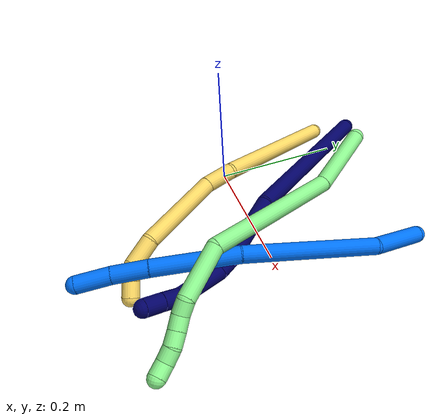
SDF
<sdf version="1.7">
 <world name="default">
  <model name="5">
   <static>0</static>
   <link name="5">
    <collision name="collision-cylinder-e_1_1_4">
     <pose>-0.055765 -0.09537 0.049164 1.09482 -0.479305 -0.295711</pose>
     <geometry><cylinder><radius>0.0125</radius><length>0.241845</length></cylinder></geometry>
     <surface>
      <friction><ode><mu>1.16</mu><mu2>1.16</mu2><slip1>0</slip1><slip2>0</slip2></ode></friction>
      <contact><ode><kp>1e+06</kp><kd>1</kd><max_vel>0</max_vel><min_depth>0.001</min_depth></ode></contact>
     </surface>
    </collision>
    <visual name="visual-cylinder-e_1_1_4">
     <pose>-0.055765 -0.09537 0.049164 1.09482 -0.479305 -0.295711</pose>
     <geometry><cylinder><radius>0.0125</radius><length>0.241845</length></cylinder></geometry>
     <material><ambient>1 0.858824 0.4 1</ambient></material>
    </visual>
    <collision name="collision-cylinder-e_2_4_5">
     <pose>-0.118486 -0.211951 0.101017 1.44467 -0.314528 -0.277673</pose>
     <geometry><cylinder><radius>0.0125</radius><length>0.044969</length></cylinder></geometry>
     <surface>
      <friction><ode><mu>1.16</mu><mu2>1.16</mu2><slip1>0</slip1><slip2>0</slip2></ode></friction>
      <contact><ode><kp>1e+06</kp><kd>1</kd><max_vel>0</max_vel><min_depth>0.001</min_depth></ode></contact>
     </surface>
    </collision>
    <visual name="visual-cylinder-e_2_4_5">
     <pose>-0.118486 -0.211951 0.101017 1.44467 -0.314528 -0.277673</pose>
     <geometry><cylinder><radius>0.0125</radius><length>0.044969</length></cylinder></geometry>
     <material><ambient>1 0.858824 0.4 1</ambient></material>
    </visual>
    <collision name="collision-cylinder-e_3_5_6">
     <pose>-0.136284 -0.29204 0.125876 1.21069 -0.170664 -0.11825</pose>
     <geometry><cylinder><radius>0.0125</radius><length>0.127679</length></cylinder></geometry>
     <surface>
      <friction><ode><mu>1.16</mu><mu2>1.16</mu2><slip1>0</slip1><slip2>0</slip2></ode></friction>
      <contact><ode><kp>1e+06</kp><kd>1</kd><max_vel>0</max_vel><min_depth>0.001</min_depth></ode></contact>
     </surface>
    </collision>
    <visual name="visual-cylinder-e_3_5_6">
     <pose>-0.136284 -0.29204 0.125876 1.21069 -0.170664 -0.11825</pose>
     <geometry><cylinder><radius>0.0125</radius><length>0.127679</length></cylinder></geometry>
     <material><ambient>1 0.858824 0.4 1</ambient></material>
    </visual>
    <collision name="collision-cylinder-e_4_6_7">
     <pose>-0.144949 -0.370812 0.15226 1.36198 0.106662 0.086456</pose>
     <geometry><cylinder><radius>0.0125</radius><length>0.040906</length></cylinder></geometry>
     <surface>
      <friction><ode><mu>1.16</mu><mu2>1.16</mu2><slip1>0</slip1><slip2>0</slip2></ode></friction>
      <contact><ode><kp>1e+06</kp><kd>1</kd><max_vel>0</max_vel><min_depth>0.001</min_depth></ode></contact>
     </surface>
    </collision>
    <visual name="visual-cylinder-e_4_6_7">
     <pose>-0.144949 -0.370812 0.15226 1.36198 0.106662 0.086456</pose>
     <geometry><cylinder><radius>0.0125</radius><length>0.040906</length></cylinder></geometry>
     <material><ambient>1 0.858824 0.4 1</ambient></material>
    </visual>
    <collision name="collision-cylinder-e_5_7_8">
     <pose>-0.136698 -0.398892 0.158193 1.36411 0.628139 0.5158</pose>
     <geometry><cylinder><radius>0.0125</radius><length>0.020671</length></cylinder></geometry>
     <surface>
      <friction><ode><mu>1.16</mu><mu2>1.16</mu2><slip1>0</slip1><slip2>0</slip2></ode></friction>
      <contact><ode><kp>1e+06</kp><kd>1</kd><max_vel>0</max_vel><min_depth>0.001</min_depth></ode></contact>
     </surface>
    </collision>
    <visual name="visual-cylinder-e_5_7_8">
     <pose>-0.136698 -0.398892 0.158193 1.36411 0.628139 0.5158</pose>
     <geometry><cylinder><radius>0.0125</radius><length>0.020671</length></cylinder></geometry>
     <material><ambient>1 0.858824 0.4 1</ambient></material>
    </visual>
    <collision name="collision-cylinder-e_6_8_2">
     <pose>-0.123282 -0.415507 0.164171 1.10275 0.660709 0.4157</pose>
     <geometry><cylinder><radius>0.0125</radius><length>0.023929</length></cylinder></geometry>
     <surface>
      <friction><ode><mu>1.16</mu><mu2>1.16</mu2><slip1>0</slip1><slip2>0</slip2></ode></friction>
      <contact><ode><kp>1e+06</kp><kd>1</kd><max_vel>0</max_vel><min_depth>0.001</min_depth></ode></contact>
     </surface>
    </collision>
    <visual name="visual-cylinder-e_6_8_2">
     <pose>-0.123282 -0.415507 0.164171 1.10275 0.660709 0.4157</pose>
     <geometry><cylinder><radius>0.0125</radius><length>0.023929</length></cylinder></geometry>
     <material><ambient>1 0.858824 0.4 1</ambient></material>
    </visual>
    <collision name="collision-sphere-2">
     <pose>-0.115939 -0.423938 0.168433 0 -0 0</pose>
     <geometry><sphere><radius>0.0125</radius></sphere></geometry>
     <surface>
      <friction><ode><mu>1.16</mu><mu2>1.16</mu2><slip1>0</slip1><slip2>0</slip2></ode></friction>
      <contact><ode><kp>1e+06</kp><kd>1</kd><max_vel>0</max_vel><min_depth>0.001</min_depth></ode></contact>
     </surface>
    </collision>
    <visual name="visual-sphere-2">
     <pose>-0.115939 -0.423938 0.168433 0 -0 0</pose>
     <geometry><sphere><radius>0.0125</radius></sphere></geometry>
     <material><ambient>1 0.858824 0.4 1</ambient></material>
    </visual>
    <collision name="collision-sphere-4">
     <pose>-0.11153 -0.19074 0.098328 0 -0 0</pose>
     <geometry><sphere><radius>0.0125</radius></sphere></geometry>
     <surface>
      <friction><ode><mu>1.16</mu><mu2>1.16</mu2><slip1>0</slip1><slip2>0</slip2></ode></friction>
      <contact><ode><kp>1e+06</kp><kd>1</kd><max_vel>0</max_vel><min_depth>0.001</min_depth></ode></contact>
     </surface>
    </collision>
    <visual name="visual-sphere-4">
     <pose>-0.11153 -0.19074 0.098328 0 -0 0</pose>
     <geometry><sphere><radius>0.0125</radius></sphere></geometry>
     <material><ambient>1 0.858824 0.4 1</ambient></material>
    </visual>
    <collision name="collision-sphere-1">
     <geometry><sphere><radius>0.0125</radius></sphere></geometry>
     <surface>
      <friction><ode><mu>1.16</mu><mu2>1.16</mu2><slip1>0</slip1><slip2>0</slip2></ode></friction>
      <contact><ode><kp>1e+06</kp><kd>1</kd><max_vel>0</max_vel><min_depth>0.001</min_depth></ode></contact>
     </surface>
    </collision>
    <visual name="visual-sphere-1">
     <geometry><sphere><radius>0.0125</radius></sphere></geometry>
     <material><ambient>1 0.858824 0.4 1</ambient></material>
    </visual>
    <collision name="collision-sphere-8">
     <pose>-0.130624 -0.407077 0.159909 0 -0 0</pose>
     <geometry><sphere><radius>0.0125</radius></sphere></geometry>
     <surface>
      <friction><ode><mu>1.16</mu><mu2>1.16</mu2><slip1>0</slip1><slip2>0</slip2></ode></friction>
      <contact><ode><kp>1e+06</kp><kd>1</kd><max_vel>0</max_vel><min_depth>0.001</min_depth></ode></contact>
     </surface>
    </collision>
    <visual name="visual-sphere-8">
     <pose>-0.130624 -0.407077 0.159909 0 -0 0</pose>
     <geometry><sphere><radius>0.0125</radius></sphere></geometry>
     <material><ambient>1 0.858824 0.4 1</ambient></material>
    </visual>
    <collision name="collision-sphere-5">
     <pose>-0.125442 -0.233163 0.103707 0 -0 0</pose>
     <geometry><sphere><radius>0.0125</radius></sphere></geometry>
     <surface>
      <friction><ode><mu>1.16</mu><mu2>1.16</mu2><slip1>0</slip1><slip2>0</slip2></ode></friction>
      <contact><ode><kp>1e+06</kp><kd>1</kd><max_vel>0</max_vel><min_depth>0.001</min_depth></ode></contact>
     </surface>
    </collision>
    <visual name="visual-sphere-5">
     <pose>-0.125442 -0.233163 0.103707 0 -0 0</pose>
     <geometry><sphere><radius>0.0125</radius></sphere></geometry>
     <material><ambient>1 0.858824 0.4 1</ambient></material>
    </visual>
    <collision name="collision-sphere-6">
     <pose>-0.147126 -0.350917 0.148045 0 -0 0</pose>
     <geometry><sphere><radius>0.0125</radius></sphere></geometry>
     <surface>
      <friction><ode><mu>1.16</mu><mu2>1.16</mu2><slip1>0</slip1><slip2>0</slip2></ode></friction>
      <contact><ode><kp>1e+06</kp><kd>1</kd><max_vel>0</max_vel><min_depth>0.001</min_depth></ode></contact>
     </surface>
    </collision>
    <visual name="visual-sphere-6">
     <pose>-0.147126 -0.350917 0.148045 0 -0 0</pose>
     <geometry><sphere><radius>0.0125</radius></sphere></geometry>
     <material><ambient>1 0.858824 0.4 1</ambient></material>
    </visual>
    <collision name="collision-sphere-7">
     <pose>-0.142772 -0.390707 0.156476 0 -0 0</pose>
     <geometry><sphere><radius>0.0125</radius></sphere></geometry>
     <surface>
      <friction><ode><mu>1.16</mu><mu2>1.16</mu2><slip1>0</slip1><slip2>0</slip2></ode></friction>
      <contact><ode><kp>1e+06</kp><kd>1</kd><max_vel>0</max_vel><min_depth>0.001</min_depth></ode></contact>
     </surface>
    </collision>
    <visual name="visual-sphere-7">
     <pose>-0.142772 -0.390707 0.156476 0 -0 0</pose>
     <geometry><sphere><radius>0.0125</radius></sphere></geometry>
     <material><ambient>1 0.858824 0.4 1</ambient></material>
    </visual>
    <inertial>
     <pose>-0.095841 -0.206481 0.091863 0 -0 0</pose>
     <mass>0.5</mass>
     <inertia>
      <ixx>0.000864</ixx>
      <ixy>0</ixy>
      <ixz>0</ixz>
      <iyy>0.000372</iyy>
      <iyz>0</iyz>
      <izz>0.001712</izz>
     </inertia>
    </inertial>
   </link>
   <pose>-0.043096 0.193643 0.012127 0.772587 0.984998 1.00739</pose>
  </model>
  <model name="7">
   <static>0</static>
   <link name="7">
    <collision name="collision-cylinder-e_1_1_4">
     <pose>0.031854 -0.03932 -0.115257 2.81282 0.255836 1.31909</pose>
     <geometry><cylinder><radius>0.0125</radius><length>0.251753</length></cylinder></geometry>
     <surface>
      <friction><ode><mu>1.16</mu><mu2>1.16</mu2><slip1>0</slip1><slip2>0</slip2></ode></friction>
      <contact><ode><kp>1e+06</kp><kd>1</kd><max_vel>0</max_vel><min_depth>0.001</min_depth></ode></contact>
     </surface>
    </collision>
    <visual name="visual-cylinder-e_1_1_4">
     <pose>0.031854 -0.03932 -0.115257 2.81282 0.255836 1.31909</pose>
     <geometry><cylinder><radius>0.0125</radius><length>0.251753</length></cylinder></geometry>
     <material><ambient>0.003922 0 0.403922 1</ambient></material>
    </visual>
    <collision name="collision-cylinder-e_2_4_5">
     <pose>0.086534 -0.104537 -0.269189 2.55156 0.455954 1.30415</pose>
     <geometry><cylinder><radius>0.0125</radius><length>0.103682</length></cylinder></geometry>
     <surface>
      <friction><ode><mu>1.16</mu><mu2>1.16</mu2><slip1>0</slip1><slip2>0</slip2></ode></friction>
      <contact><ode><kp>1e+06</kp><kd>1</kd><max_vel>0</max_vel><min_depth>0.001</min_depth></ode></contact>
     </surface>
    </collision>
    <visual name="visual-cylinder-e_2_4_5">
     <pose>0.086534 -0.104537 -0.269189 2.55156 0.455954 1.30415</pose>
     <geometry><cylinder><radius>0.0125</radius><length>0.103682</length></cylinder></geometry>
     <material><ambient>0.003922 0 0.403922 1</ambient></material>
    </visual>
    <collision name="collision-cylinder-e_3_5_6">
     <pose>0.114581 -0.134185 -0.316761 2.74263 0.495687 1.7934</pose>
     <geometry><cylinder><radius>0.0125</radius><length>0.021952</length></cylinder></geometry>
     <surface>
      <friction><ode><mu>1.16</mu><mu2>1.16</mu2><slip1>0</slip1><slip2>0</slip2></ode></friction>
      <contact><ode><kp>1e+06</kp><kd>1</kd><max_vel>0</max_vel><min_depth>0.001</min_depth></ode></contact>
     </surface>
    </collision>
    <visual name="visual-cylinder-e_3_5_6">
     <pose>0.114581 -0.134185 -0.316761 2.74263 0.495687 1.7934</pose>
     <geometry><cylinder><radius>0.0125</radius><length>0.021952</length></cylinder></geometry>
     <material><ambient>0.003922 0 0.403922 1</ambient></material>
    </visual>
    <collision name="collision-cylinder-e_4_6_7">
     <pose>0.128619 -0.142856 -0.359749 2.99823 0.250605 2.10541</pose>
     <geometry><cylinder><radius>0.0125</radius><length>0.071111</length></cylinder></geometry>
     <surface>
      <friction><ode><mu>1.16</mu><mu2>1.16</mu2><slip1>0</slip1><slip2>0</slip2></ode></friction>
      <contact><ode><kp>1e+06</kp><kd>1</kd><max_vel>0</max_vel><min_depth>0.001</min_depth></ode></contact>
     </surface>
    </collision>
    <visual name="visual-cylinder-e_4_6_7">
     <pose>0.128619 -0.142856 -0.359749 2.99823 0.250605 2.10541</pose>
     <geometry><cylinder><radius>0.0125</radius><length>0.071111</length></cylinder></geometry>
     <material><ambient>0.003922 0 0.403922 1</ambient></material>
    </visual>
    <collision name="collision-cylinder-e_5_7_8">
     <pose>0.139505 -0.146347 -0.406081 -3.02528 0.166319 -1.92214</pose>
     <geometry><cylinder><radius>0.0125</radius><length>0.024991</length></cylinder></geometry>
     <surface>
      <friction><ode><mu>1.16</mu><mu2>1.16</mu2><slip1>0</slip1><slip2>0</slip2></ode></friction>
      <contact><ode><kp>1e+06</kp><kd>1</kd><max_vel>0</max_vel><min_depth>0.001</min_depth></ode></contact>
     </surface>
    </collision>
    <visual name="visual-cylinder-e_5_7_8">
     <pose>0.139505 -0.146347 -0.406081 -3.02528 0.166319 -1.92214</pose>
     <geometry><cylinder><radius>0.0125</radius><length>0.024991</length></cylinder></geometry>
     <material><ambient>0.003922 0 0.403922 1</ambient></material>
    </visual>
    <collision name="collision-cylinder-e_6_8_2">
     <pose>0.144066 -0.143742 -0.431287 -3.05118 0.189133 -2.25157</pose>
     <geometry><cylinder><radius>0.0125</radius><length>0.026511</length></cylinder></geometry>
     <surface>
      <friction><ode><mu>1.16</mu><mu2>1.16</mu2><slip1>0</slip1><slip2>0</slip2></ode></friction>
      <contact><ode><kp>1e+06</kp><kd>1</kd><max_vel>0</max_vel><min_depth>0.001</min_depth></ode></contact>
     </surface>
    </collision>
    <visual name="visual-cylinder-e_6_8_2">
     <pose>0.144066 -0.143742 -0.431287 -3.05118 0.189133 -2.25157</pose>
     <geometry><cylinder><radius>0.0125</radius><length>0.026511</length></cylinder></geometry>
     <material><ambient>0.003922 0 0.403922 1</ambient></material>
    </visual>
    <collision name="collision-sphere-2">
     <pose>0.146558 -0.142566 -0.444253 0 -0 0</pose>
     <geometry><sphere><radius>0.0125</radius></sphere></geometry>
     <surface>
      <friction><ode><mu>1.16</mu><mu2>1.16</mu2><slip1>0</slip1><slip2>0</slip2></ode></friction>
      <contact><ode><kp>1e+06</kp><kd>1</kd><max_vel>0</max_vel><min_depth>0.001</min_depth></ode></contact>
     </surface>
    </collision>
    <visual name="visual-sphere-2">
     <pose>0.146558 -0.142566 -0.444253 0 -0 0</pose>
     <geometry><sphere><radius>0.0125</radius></sphere></geometry>
     <material><ambient>0.003922 0 0.403922 1</ambient></material>
    </visual>
    <collision name="collision-sphere-4">
     <pose>0.063707 -0.07864 -0.230514 0 -0 0</pose>
     <geometry><sphere><radius>0.0125</radius></sphere></geometry>
     <surface>
      <friction><ode><mu>1.16</mu><mu2>1.16</mu2><slip1>0</slip1><slip2>0</slip2></ode></friction>
      <contact><ode><kp>1e+06</kp><kd>1</kd><max_vel>0</max_vel><min_depth>0.001</min_depth></ode></contact>
     </surface>
    </collision>
    <visual name="visual-sphere-4">
     <pose>0.063707 -0.07864 -0.230514 0 -0 0</pose>
     <geometry><sphere><radius>0.0125</radius></sphere></geometry>
     <material><ambient>0.003922 0 0.403922 1</ambient></material>
    </visual>
    <collision name="collision-sphere-1">
     <geometry><sphere><radius>0.0125</radius></sphere></geometry>
     <surface>
      <friction><ode><mu>1.16</mu><mu2>1.16</mu2><slip1>0</slip1><slip2>0</slip2></ode></friction>
      <contact><ode><kp>1e+06</kp><kd>1</kd><max_vel>0</max_vel><min_depth>0.001</min_depth></ode></contact>
     </surface>
    </collision>
    <visual name="visual-sphere-1">
     <geometry><sphere><radius>0.0125</radius></sphere></geometry>
     <material><ambient>0.003922 0 0.403922 1</ambient></material>
    </visual>
    <collision name="collision-sphere-8">
     <pose>0.141574 -0.144917 -0.418321 0 -0 0</pose>
     <geometry><sphere><radius>0.0125</radius></sphere></geometry>
     <surface>
      <friction><ode><mu>1.16</mu><mu2>1.16</mu2><slip1>0</slip1><slip2>0</slip2></ode></friction>
      <contact><ode><kp>1e+06</kp><kd>1</kd><max_vel>0</max_vel><min_depth>0.001</min_depth></ode></contact>
     </surface>
    </collision>
    <visual name="visual-sphere-8">
     <pose>0.141574 -0.144917 -0.418321 0 -0 0</pose>
     <geometry><sphere><radius>0.0125</radius></sphere></geometry>
     <material><ambient>0.003922 0 0.403922 1</ambient></material>
    </visual>
    <collision name="collision-sphere-5">
     <pose>0.10936 -0.130434 -0.307864 0 -0 0</pose>
     <geometry><sphere><radius>0.0125</radius></sphere></geometry>
     <surface>
      <friction><ode><mu>1.16</mu><mu2>1.16</mu2><slip1>0</slip1><slip2>0</slip2></ode></friction>
      <contact><ode><kp>1e+06</kp><kd>1</kd><max_vel>0</max_vel><min_depth>0.001</min_depth></ode></contact>
     </surface>
    </collision>
    <visual name="visual-sphere-5">
     <pose>0.10936 -0.130434 -0.307864 0 -0 0</pose>
     <geometry><sphere><radius>0.0125</radius></sphere></geometry>
     <material><ambient>0.003922 0 0.403922 1</ambient></material>
    </visual>
    <collision name="collision-sphere-6">
     <pose>0.119801 -0.137935 -0.325658 0 -0 0</pose>
     <geometry><sphere><radius>0.0125</radius></sphere></geometry>
     <surface>
      <friction><ode><mu>1.16</mu><mu2>1.16</mu2><slip1>0</slip1><slip2>0</slip2></ode></friction>
      <contact><ode><kp>1e+06</kp><kd>1</kd><max_vel>0</max_vel><min_depth>0.001</min_depth></ode></contact>
     </surface>
    </collision>
    <visual name="visual-sphere-6">
     <pose>0.119801 -0.137935 -0.325658 0 -0 0</pose>
     <geometry><sphere><radius>0.0125</radius></sphere></geometry>
     <material><ambient>0.003922 0 0.403922 1</ambient></material>
    </visual>
    <collision name="collision-sphere-7">
     <pose>0.137436 -0.147777 -0.393841 0 -0 0</pose>
     <geometry><sphere><radius>0.0125</radius></sphere></geometry>
     <surface>
      <friction><ode><mu>1.16</mu><mu2>1.16</mu2><slip1>0</slip1><slip2>0</slip2></ode></friction>
      <contact><ode><kp>1e+06</kp><kd>1</kd><max_vel>0</max_vel><min_depth>0.001</min_depth></ode></contact>
     </surface>
    </collision>
    <visual name="visual-sphere-7">
     <pose>0.137436 -0.147777 -0.393841 0 -0 0</pose>
     <geometry><sphere><radius>0.0125</radius></sphere></geometry>
     <material><ambient>0.003922 0 0.403922 1</ambient></material>
    </visual>
    <inertial>
     <pose>0.071917 -0.08262 -0.222089 0 -0 0</pose>
     <mass>0.5</mass>
     <inertia>
      <ixx>0.001702</ixx>
      <ixy>0</ixy>
      <ixz>0</ixz>
      <iyy>0.001165</iyy>
      <iyz>0</iyz>
      <izz>4.5e-05</izz>
     </inertia>
    </inertial>
   </link>
   <pose>0.015619 0.22256 0.053326 2.35157 0.925113 -2.05793</pose>
  </model>
  <model name="13">
   <static>0</static>
   <link name="13">
    <collision name="collision-cylinder-e_1_1_4">
     <pose>0.008551 -0.032474 0.044266 0.632928 0.154507 0.050686</pose>
     <geometry><cylinder><radius>0.0125</radius><length>0.111125</length></cylinder></geometry>
     <surface>
      <friction><ode><mu>1.16</mu><mu2>1.16</mu2><slip1>0</slip1><slip2>0</slip2></ode></friction>
      <contact><ode><kp>1e+06</kp><kd>1</kd><max_vel>0</max_vel><min_depth>0.001</min_depth></ode></contact>
     </surface>
    </collision>
    <visual name="visual-cylinder-e_1_1_4">
     <pose>0.008551 -0.032474 0.044266 0.632928 0.154507 0.050686</pose>
     <geometry><cylinder><radius>0.0125</radius><length>0.111125</length></cylinder></geometry>
     <material><ambient>0.564706 0.984314 0.572549 1</ambient></material>
    </visual>
    <collision name="collision-cylinder-e_2_4_5">
     <pose>0.057833 -0.140998 0.149116 0.898115 0.396711 0.193117</pose>
     <geometry><cylinder><radius>0.0125</radius><length>0.210835</length></cylinder></geometry>
     <surface>
      <friction><ode><mu>1.16</mu><mu2>1.16</mu2><slip1>0</slip1><slip2>0</slip2></ode></friction>
      <contact><ode><kp>1e+06</kp><kd>1</kd><max_vel>0</max_vel><min_depth>0.001</min_depth></ode></contact>
     </surface>
    </collision>
    <visual name="visual-cylinder-e_2_4_5">
     <pose>0.057833 -0.140998 0.149116 0.898115 0.396711 0.193117</pose>
     <geometry><cylinder><radius>0.0125</radius><length>0.210835</length></cylinder></geometry>
     <material><ambient>0.564706 0.984314 0.572549 1</ambient></material>
    </visual>
    <collision name="collision-cylinder-e_3_5_6">
     <pose>0.10094 -0.235405 0.243961 0.491877 0.061031 0.015324</pose>
     <geometry><cylinder><radius>0.0125</radius><length>0.077886</length></cylinder></geometry>
     <surface>
      <friction><ode><mu>1.16</mu><mu2>1.16</mu2><slip1>0</slip1><slip2>0</slip2></ode></friction>
      <contact><ode><kp>1e+06</kp><kd>1</kd><max_vel>0</max_vel><min_depth>0.001</min_depth></ode></contact>
     </surface>
    </collision>
    <visual name="visual-cylinder-e_3_5_6">
     <pose>0.10094 -0.235405 0.243961 0.491877 0.061031 0.015324</pose>
     <geometry><cylinder><radius>0.0125</radius><length>0.077886</length></cylinder></geometry>
     <material><ambient>0.564706 0.984314 0.572549 1</ambient></material>
    </visual>
    <collision name="collision-cylinder-e_4_6_7">
     <pose>0.104078 -0.254059 0.288216 0.029692 0.076061 0.00113</pose>
     <geometry><cylinder><radius>0.0125</radius><length>0.020051</length></cylinder></geometry>
     <surface>
      <friction><ode><mu>1.16</mu><mu2>1.16</mu2><slip1>0</slip1><slip2>0</slip2></ode></friction>
      <contact><ode><kp>1e+06</kp><kd>1</kd><max_vel>0</max_vel><min_depth>0.001</min_depth></ode></contact>
     </surface>
    </collision>
    <visual name="visual-cylinder-e_4_6_7">
     <pose>0.104078 -0.254059 0.288216 0.029692 0.076061 0.00113</pose>
     <geometry><cylinder><radius>0.0125</radius><length>0.020051</length></cylinder></geometry>
     <material><ambient>0.564706 0.984314 0.572549 1</ambient></material>
    </visual>
    <collision name="collision-cylinder-e_5_7_8">
     <pose>0.103679 -0.256248 0.307985 0.191215 -0.116047 -0.011141</pose>
     <geometry><cylinder><radius>0.0125</radius><length>0.020051</length></cylinder></geometry>
     <surface>
      <friction><ode><mu>1.16</mu><mu2>1.16</mu2><slip1>0</slip1><slip2>0</slip2></ode></friction>
      <contact><ode><kp>1e+06</kp><kd>1</kd><max_vel>0</max_vel><min_depth>0.001</min_depth></ode></contact>
     </surface>
    </collision>
    <visual name="visual-cylinder-e_5_7_8">
     <pose>0.103679 -0.256248 0.307985 0.191215 -0.116047 -0.011141</pose>
     <geometry><cylinder><radius>0.0125</radius><length>0.020051</length></cylinder></geometry>
     <material><ambient>0.564706 0.984314 0.572549 1</ambient></material>
    </visual>
    <collision name="collision-cylinder-e_6_8_9">
     <pose>0.101501 -0.260717 0.327382 0.26158 -0.101745 -0.013395</pose>
     <geometry><cylinder><radius>0.0125</radius><length>0.020023</length></cylinder></geometry>
     <surface>
      <friction><ode><mu>1.16</mu><mu2>1.16</mu2><slip1>0</slip1><slip2>0</slip2></ode></friction>
      <contact><ode><kp>1e+06</kp><kd>1</kd><max_vel>0</max_vel><min_depth>0.001</min_depth></ode></contact>
     </surface>
    </collision>
    <visual name="visual-cylinder-e_6_8_9">
     <pose>0.101501 -0.260717 0.327382 0.26158 -0.101745 -0.013395</pose>
     <geometry><cylinder><radius>0.0125</radius><length>0.020023</length></cylinder></geometry>
     <material><ambient>0.564706 0.984314 0.572549 1</ambient></material>
    </visual>
    <collision name="collision-cylinder-e_7_9_10">
     <pose>0.101781 -0.265001 0.346772 0.173169 0.130057 0.011305</pose>
     <geometry><cylinder><radius>0.0125</radius><length>0.020004</length></cylinder></geometry>
     <surface>
      <friction><ode><mu>1.16</mu><mu2>1.16</mu2><slip1>0</slip1><slip2>0</slip2></ode></friction>
      <contact><ode><kp>1e+06</kp><kd>1</kd><max_vel>0</max_vel><min_depth>0.001</min_depth></ode></contact>
     </surface>
    </collision>
    <visual name="visual-cylinder-e_7_9_10">
     <pose>0.101781 -0.265001 0.346772 0.173169 0.130057 0.011305</pose>
     <geometry><cylinder><radius>0.0125</radius><length>0.020004</length></cylinder></geometry>
     <material><ambient>0.564706 0.984314 0.572549 1</ambient></material>
    </visual>
    <collision name="collision-cylinder-e_8_10_2">
     <pose>0.103613 -0.271348 0.365398 0.482401 0.05341 0.013141</pose>
     <geometry><cylinder><radius>0.0125</radius><length>0.020024</length></cylinder></geometry>
     <surface>
      <friction><ode><mu>1.16</mu><mu2>1.16</mu2><slip1>0</slip1><slip2>0</slip2></ode></friction>
      <contact><ode><kp>1e+06</kp><kd>1</kd><max_vel>0</max_vel><min_depth>0.001</min_depth></ode></contact>
     </surface>
    </collision>
    <visual name="visual-cylinder-e_8_10_2">
     <pose>0.103613 -0.271348 0.365398 0.482401 0.05341 0.013141</pose>
     <geometry><cylinder><radius>0.0125</radius><length>0.020024</length></cylinder></geometry>
     <material><ambient>0.564706 0.984314 0.572549 1</ambient></material>
    </visual>
    <collision name="collision-sphere-2">
     <pose>0.104147 -0.275986 0.374255 0 -0 0</pose>
     <geometry><sphere><radius>0.0125</radius></sphere></geometry>
     <surface>
      <friction><ode><mu>1.16</mu><mu2>1.16</mu2><slip1>0</slip1><slip2>0</slip2></ode></friction>
      <contact><ode><kp>1e+06</kp><kd>1</kd><max_vel>0</max_vel><min_depth>0.001</min_depth></ode></contact>
     </surface>
    </collision>
    <visual name="visual-sphere-2">
     <pose>0.104147 -0.275986 0.374255 0 -0 0</pose>
     <geometry><sphere><radius>0.0125</radius></sphere></geometry>
     <material><ambient>0.564706 0.984314 0.572549 1</ambient></material>
    </visual>
    <collision name="collision-sphere-10">
     <pose>0.103078 -0.26671 0.356541 0 -0 0</pose>
     <geometry><sphere><radius>0.0125</radius></sphere></geometry>
     <surface>
      <friction><ode><mu>1.16</mu><mu2>1.16</mu2><slip1>0</slip1><slip2>0</slip2></ode></friction>
      <contact><ode><kp>1e+06</kp><kd>1</kd><max_vel>0</max_vel><min_depth>0.001</min_depth></ode></contact>
     </surface>
    </collision>
    <visual name="visual-sphere-10">
     <pose>0.103078 -0.26671 0.356541 0 -0 0</pose>
     <geometry><sphere><radius>0.0125</radius></sphere></geometry>
     <material><ambient>0.564706 0.984314 0.572549 1</ambient></material>
    </visual>
    <collision name="collision-sphere-9">
     <pose>0.100484 -0.263292 0.337003 0 -0 0</pose>
     <geometry><sphere><radius>0.0125</radius></sphere></geometry>
     <surface>
      <friction><ode><mu>1.16</mu><mu2>1.16</mu2><slip1>0</slip1><slip2>0</slip2></ode></friction>
      <contact><ode><kp>1e+06</kp><kd>1</kd><max_vel>0</max_vel><min_depth>0.001</min_depth></ode></contact>
     </surface>
    </collision>
    <visual name="visual-sphere-9">
     <pose>0.100484 -0.263292 0.337003 0 -0 0</pose>
     <geometry><sphere><radius>0.0125</radius></sphere></geometry>
     <material><ambient>0.564706 0.984314 0.572549 1</ambient></material>
    </visual>
    <collision name="collision-sphere-4">
     <pose>0.017101 -0.064949 0.088533 0 -0 0</pose>
     <geometry><sphere><radius>0.0125</radius></sphere></geometry>
     <surface>
      <friction><ode><mu>1.16</mu><mu2>1.16</mu2><slip1>0</slip1><slip2>0</slip2></ode></friction>
      <contact><ode><kp>1e+06</kp><kd>1</kd><max_vel>0</max_vel><min_depth>0.001</min_depth></ode></contact>
     </surface>
    </collision>
    <visual name="visual-sphere-4">
     <pose>0.017101 -0.064949 0.088533 0 -0 0</pose>
     <geometry><sphere><radius>0.0125</radius></sphere></geometry>
     <material><ambient>0.564706 0.984314 0.572549 1</ambient></material>
    </visual>
    <collision name="collision-sphere-1">
     <geometry><sphere><radius>0.0125</radius></sphere></geometry>
     <surface>
      <friction><ode><mu>1.16</mu><mu2>1.16</mu2><slip1>0</slip1><slip2>0</slip2></ode></friction>
      <contact><ode><kp>1e+06</kp><kd>1</kd><max_vel>0</max_vel><min_depth>0.001</min_depth></ode></contact>
     </surface>
    </collision>
    <visual name="visual-sphere-1">
     <geometry><sphere><radius>0.0125</radius></sphere></geometry>
     <material><ambient>0.564706 0.984314 0.572549 1</ambient></material>
    </visual>
    <collision name="collision-sphere-8">
     <pose>0.102518 -0.258141 0.317761 0 -0 0</pose>
     <geometry><sphere><radius>0.0125</radius></sphere></geometry>
     <surface>
      <friction><ode><mu>1.16</mu><mu2>1.16</mu2><slip1>0</slip1><slip2>0</slip2></ode></friction>
      <contact><ode><kp>1e+06</kp><kd>1</kd><max_vel>0</max_vel><min_depth>0.001</min_depth></ode></contact>
     </surface>
    </collision>
    <visual name="visual-sphere-8">
     <pose>0.102518 -0.258141 0.317761 0 -0 0</pose>
     <geometry><sphere><radius>0.0125</radius></sphere></geometry>
     <material><ambient>0.564706 0.984314 0.572549 1</ambient></material>
    </visual>
    <collision name="collision-sphere-5">
     <pose>0.098565 -0.217047 0.209699 0 -0 0</pose>
     <geometry><sphere><radius>0.0125</radius></sphere></geometry>
     <surface>
      <friction><ode><mu>1.16</mu><mu2>1.16</mu2><slip1>0</slip1><slip2>0</slip2></ode></friction>
      <contact><ode><kp>1e+06</kp><kd>1</kd><max_vel>0</max_vel><min_depth>0.001</min_depth></ode></contact>
     </surface>
    </collision>
    <visual name="visual-sphere-5">
     <pose>0.098565 -0.217047 0.209699 0 -0 0</pose>
     <geometry><sphere><radius>0.0125</radius></sphere></geometry>
     <material><ambient>0.564706 0.984314 0.572549 1</ambient></material>
    </visual>
    <collision name="collision-sphere-6">
     <pose>0.103316 -0.253762 0.278223 0 -0 0</pose>
     <geometry><sphere><radius>0.0125</radius></sphere></geometry>
     <surface>
      <friction><ode><mu>1.16</mu><mu2>1.16</mu2><slip1>0</slip1><slip2>0</slip2></ode></friction>
      <contact><ode><kp>1e+06</kp><kd>1</kd><max_vel>0</max_vel><min_depth>0.001</min_depth></ode></contact>
     </surface>
    </collision>
    <visual name="visual-sphere-6">
     <pose>0.103316 -0.253762 0.278223 0 -0 0</pose>
     <geometry><sphere><radius>0.0125</radius></sphere></geometry>
     <material><ambient>0.564706 0.984314 0.572549 1</ambient></material>
    </visual>
    <collision name="collision-sphere-7">
     <pose>0.104839 -0.254356 0.298208 0 -0 0</pose>
     <geometry><sphere><radius>0.0125</radius></sphere></geometry>
     <surface>
      <friction><ode><mu>1.16</mu><mu2>1.16</mu2><slip1>0</slip1><slip2>0</slip2></ode></friction>
      <contact><ode><kp>1e+06</kp><kd>1</kd><max_vel>0</max_vel><min_depth>0.001</min_depth></ode></contact>
     </surface>
    </collision>
    <visual name="visual-sphere-7">
     <pose>0.104839 -0.254356 0.298208 0 -0 0</pose>
     <geometry><sphere><radius>0.0125</radius></sphere></geometry>
     <material><ambient>0.564706 0.984314 0.572549 1</ambient></material>
    </visual>
    <inertial>
     <pose>0.062628 -0.155716 0.176245 0 -0 0</pose>
     <mass>0.5</mass>
     <inertia>
      <ixx>0.001036</ixx>
      <ixy>0</ixy>
      <ixz>0</ixz>
      <iyy>0.000794</iyy>
      <iyz>0</iyz>
      <izz>0.000364</izz>
     </inertia>
    </inertial>
   </link>
   <pose>0.087792 0.19626 0.088028 -2.36132 0.037044 -2.38435</pose>
  </model>
  <model name="14">
   <static>0</static>
   <link name="14">
    <collision name="collision-cylinder-e_1_1_4">
     <pose>0.007407 -0.039453 -0.011988 1.86579 0.177736 0.239252</pose>
     <geometry><cylinder><radius>0.0125</radius><length>0.083789</length></cylinder></geometry>
     <surface>
      <friction><ode><mu>1.16</mu><mu2>1.16</mu2><slip1>0</slip1><slip2>0</slip2></ode></friction>
      <contact><ode><kp>1e+06</kp><kd>1</kd><max_vel>0</max_vel><min_depth>0.001</min_depth></ode></contact>
     </surface>
    </collision>
    <visual name="visual-cylinder-e_1_1_4">
     <pose>0.007407 -0.039453 -0.011988 1.86579 0.177736 0.239252</pose>
     <geometry><cylinder><radius>0.0125</radius><length>0.083789</length></cylinder></geometry>
     <material><ambient>0 0.462745 1 1</ambient></material>
    </visual>
    <collision name="collision-cylinder-e_2_4_5">
     <pose>0.034923 -0.175146 -0.018538 1.51435 0.205663 0.194442</pose>
     <geometry><cylinder><radius>0.0125</radius><length>0.196936</length></cylinder></geometry>
     <surface>
      <friction><ode><mu>1.16</mu><mu2>1.16</mu2><slip1>0</slip1><slip2>0</slip2></ode></friction>
      <contact><ode><kp>1e+06</kp><kd>1</kd><max_vel>0</max_vel><min_depth>0.001</min_depth></ode></contact>
     </surface>
    </collision>
    <visual name="visual-cylinder-e_2_4_5">
     <pose>0.034923 -0.175146 -0.018538 1.51435 0.205663 0.194442</pose>
     <geometry><cylinder><radius>0.0125</radius><length>0.196936</length></cylinder></geometry>
     <material><ambient>0 0.462745 1 1</ambient></material>
    </visual>
    <collision name="collision-cylinder-e_3_5_6">
     <pose>0.058895 -0.331649 -0.004333 1.42635 0.063353 0.054809</pose>
     <geometry><cylinder><radius>0.0125</radius><length>0.122039</length></cylinder></geometry>
     <surface>
      <friction><ode><mu>1.16</mu><mu2>1.16</mu2><slip1>0</slip1><slip2>0</slip2></ode></friction>
      <contact><ode><kp>1e+06</kp><kd>1</kd><max_vel>0</max_vel><min_depth>0.001</min_depth></ode></contact>
     </surface>
    </collision>
    <visual name="visual-cylinder-e_3_5_6">
     <pose>0.058895 -0.331649 -0.004333 1.42635 0.063353 0.054809</pose>
     <geometry><cylinder><radius>0.0125</radius><length>0.122039</length></cylinder></geometry>
     <material><ambient>0 0.462745 1 1</ambient></material>
    </visual>
    <collision name="collision-cylinder-e_4_6_7">
     <pose>0.062973 -0.41646 0.008774 1.39574 0.008634 0.007241</pose>
     <geometry><cylinder><radius>0.0125</radius><length>0.04986</length></cylinder></geometry>
     <surface>
      <friction><ode><mu>1.16</mu><mu2>1.16</mu2><slip1>0</slip1><slip2>0</slip2></ode></friction>
      <contact><ode><kp>1e+06</kp><kd>1</kd><max_vel>0</max_vel><min_depth>0.001</min_depth></ode></contact>
     </surface>
    </collision>
    <visual name="visual-cylinder-e_4_6_7">
     <pose>0.062973 -0.41646 0.008774 1.39574 0.008634 0.007241</pose>
     <geometry><cylinder><radius>0.0125</radius><length>0.04986</length></cylinder></geometry>
     <material><ambient>0 0.462745 1 1</ambient></material>
    </visual>
    <collision name="collision-cylinder-e_5_7_2">
     <pose>0.062299 -0.464572 0.015367 1.47557 -0.037562 -0.034146</pose>
     <geometry><cylinder><radius>0.0125</radius><length>0.047375</length></cylinder></geometry>
     <surface>
      <friction><ode><mu>1.16</mu><mu2>1.16</mu2><slip1>0</slip1><slip2>0</slip2></ode></friction>
      <contact><ode><kp>1e+06</kp><kd>1</kd><max_vel>0</max_vel><min_depth>0.001</min_depth></ode></contact>
     </surface>
    </collision>
    <visual name="visual-cylinder-e_5_7_2">
     <pose>0.062299 -0.464572 0.015367 1.47557 -0.037562 -0.034146</pose>
     <geometry><cylinder><radius>0.0125</radius><length>0.047375</length></cylinder></geometry>
     <material><ambient>0 0.462745 1 1</ambient></material>
    </visual>
    <collision name="collision-sphere-2">
     <pose>0.061409 -0.488135 0.017617 0 -0 0</pose>
     <geometry><sphere><radius>0.0125</radius></sphere></geometry>
     <surface>
      <friction><ode><mu>1.16</mu><mu2>1.16</mu2><slip1>0</slip1><slip2>0</slip2></ode></friction>
      <contact><ode><kp>1e+06</kp><kd>1</kd><max_vel>0</max_vel><min_depth>0.001</min_depth></ode></contact>
     </surface>
    </collision>
    <visual name="visual-sphere-2">
     <pose>0.061409 -0.488135 0.017617 0 -0 0</pose>
     <geometry><sphere><radius>0.0125</radius></sphere></geometry>
     <material><ambient>0 0.462745 1 1</ambient></material>
    </visual>
    <collision name="collision-sphere-7">
     <pose>0.063188 -0.441008 0.013116 0 -0 0</pose>
     <geometry><sphere><radius>0.0125</radius></sphere></geometry>
     <surface>
      <friction><ode><mu>1.16</mu><mu2>1.16</mu2><slip1>0</slip1><slip2>0</slip2></ode></friction>
      <contact><ode><kp>1e+06</kp><kd>1</kd><max_vel>0</max_vel><min_depth>0.001</min_depth></ode></contact>
     </surface>
    </collision>
    <visual name="visual-sphere-7">
     <pose>0.063188 -0.441008 0.013116 0 -0 0</pose>
     <geometry><sphere><radius>0.0125</radius></sphere></geometry>
     <material><ambient>0 0.462745 1 1</ambient></material>
    </visual>
    <collision name="collision-sphere-6">
     <pose>0.062758 -0.391912 0.004432 0 -0 0</pose>
     <geometry><sphere><radius>0.0125</radius></sphere></geometry>
     <surface>
      <friction><ode><mu>1.16</mu><mu2>1.16</mu2><slip1>0</slip1><slip2>0</slip2></ode></friction>
      <contact><ode><kp>1e+06</kp><kd>1</kd><max_vel>0</max_vel><min_depth>0.001</min_depth></ode></contact>
     </surface>
    </collision>
    <visual name="visual-sphere-6">
     <pose>0.062758 -0.391912 0.004432 0 -0 0</pose>
     <geometry><sphere><radius>0.0125</radius></sphere></geometry>
     <material><ambient>0 0.462745 1 1</ambient></material>
    </visual>
    <collision name="collision-sphere-5">
     <pose>0.055032 -0.271386 -0.013099 0 -0 0</pose>
     <geometry><sphere><radius>0.0125</radius></sphere></geometry>
     <surface>
      <friction><ode><mu>1.16</mu><mu2>1.16</mu2><slip1>0</slip1><slip2>0</slip2></ode></friction>
      <contact><ode><kp>1e+06</kp><kd>1</kd><max_vel>0</max_vel><min_depth>0.001</min_depth></ode></contact>
     </surface>
    </collision>
    <visual name="visual-sphere-5">
     <pose>0.055032 -0.271386 -0.013099 0 -0 0</pose>
     <geometry><sphere><radius>0.0125</radius></sphere></geometry>
     <material><ambient>0 0.462745 1 1</ambient></material>
    </visual>
    <collision name="collision-sphere-1">
     <geometry><sphere><radius>0.0125</radius></sphere></geometry>
     <surface>
      <friction><ode><mu>1.16</mu><mu2>1.16</mu2><slip1>0</slip1><slip2>0</slip2></ode></friction>
      <contact><ode><kp>1e+06</kp><kd>1</kd><max_vel>0</max_vel><min_depth>0.001</min_depth></ode></contact>
     </surface>
    </collision>
    <visual name="visual-sphere-1">
     <geometry><sphere><radius>0.0125</radius></sphere></geometry>
     <material><ambient>0 0.462745 1 1</ambient></material>
    </visual>
    <collision name="collision-sphere-4">
     <pose>0.014814 -0.078907 -0.023977 0 -0 0</pose>
     <geometry><sphere><radius>0.0125</radius></sphere></geometry>
     <surface>
      <friction><ode><mu>1.16</mu><mu2>1.16</mu2><slip1>0</slip1><slip2>0</slip2></ode></friction>
      <contact><ode><kp>1e+06</kp><kd>1</kd><max_vel>0</max_vel><min_depth>0.001</min_depth></ode></contact>
     </surface>
    </collision>
    <visual name="visual-sphere-4">
     <pose>0.014814 -0.078907 -0.023977 0 -0 0</pose>
     <geometry><sphere><radius>0.0125</radius></sphere></geometry>
     <material><ambient>0 0.462745 1 1</ambient></material>
    </visual>
    <inertial>
     <pose>0.041554 -0.242093 -0.008037 0 -0 0</pose>
     <mass>0.5</mass>
     <inertia>
      <ixx>0.000995</ixx>
      <ixy>0</ixy>
      <ixz>0</ixz>
      <iyy>0.000179</iyy>
      <iyz>0</iyz>
      <izz>0.000707</izz>
     </inertia>
    </inertial>
   </link>
   <pose>0.254579 0.214572 0.015347 3.05897 -1.18932 -3.13078</pose>
  </model>
 </world>
</sdf>
